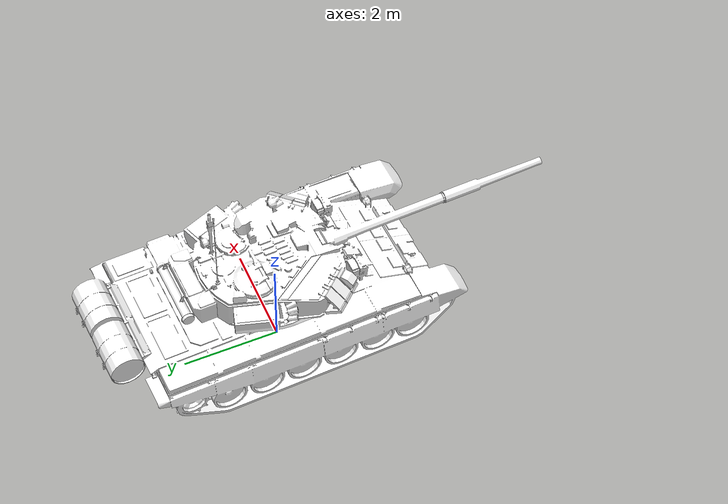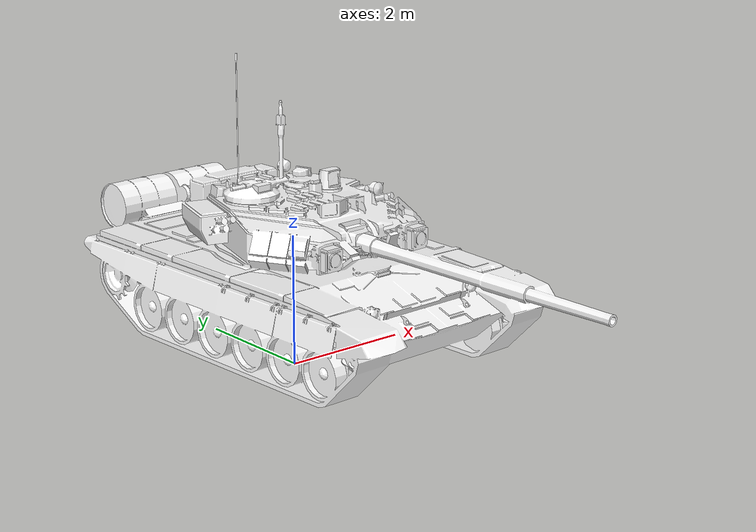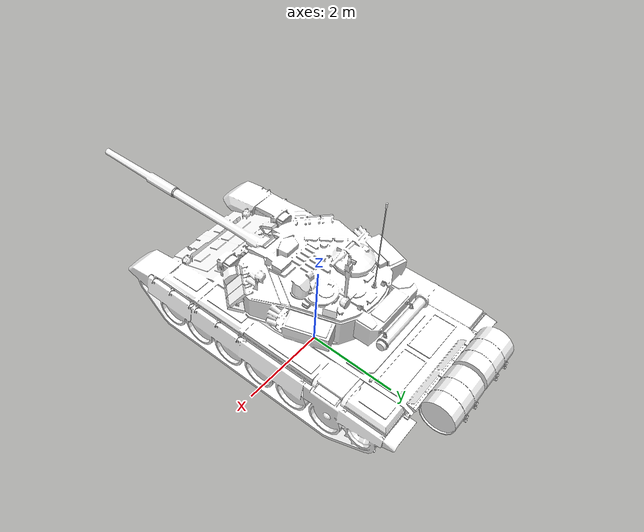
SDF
<?xml version="1.0" ?>
<sdf version="1.0">
  <model name="T90_1">
    <pose>0 0 0.625  0 0 0</pose>
    <static>false</static>
    <link name="link">
      <inertial>
        <mass>40.0</mass>
        <inertia>
          <ixx>1</ixx>
          <ixy>0</ixy>
          <ixz>0</ixz>
          <iyy>1</iyy>
          <iyz>0</iyz>
          <izz>1</izz>
        </inertia>
      </inertial>

      <collision name="collision">
        <geometry>
          <box>
              <size>0.20 0.80 0.25</size>
          </box>
        </geometry>
	<surface>
          <contact>
            <ode>
              <max_vel>0.1</max_vel>
              <min_depth>0.001</min_depth>
            </ode>
          </contact>
        </surface>
      </collision>
      <visual name="visual">
        <geometry>
          <mesh>
            <uri>model://T90_1/meshes/T90_1.dae</uri>
          </mesh>
	</geometry>
	<material>
          <script>
            <uri>model://T90_1/materials/scripts</uri>
            <uri>model://T90_1/materials/textures</uri>
            <name>ArucoVisualMarker0/Marker</name>
          </script>
          <ambient>1 1 1 1</ambient>
          <diffuse>1 1 1 1</diffuse>
          <specular>0 0 0 1</specular>
          <emissive>1 1 1 0</emissive>
          <shader type='vertex'>
            <normal_map>__default__</normal_map>
          </shader>
        </material>
      </visual>
    </link>
  </model>
</sdf>
